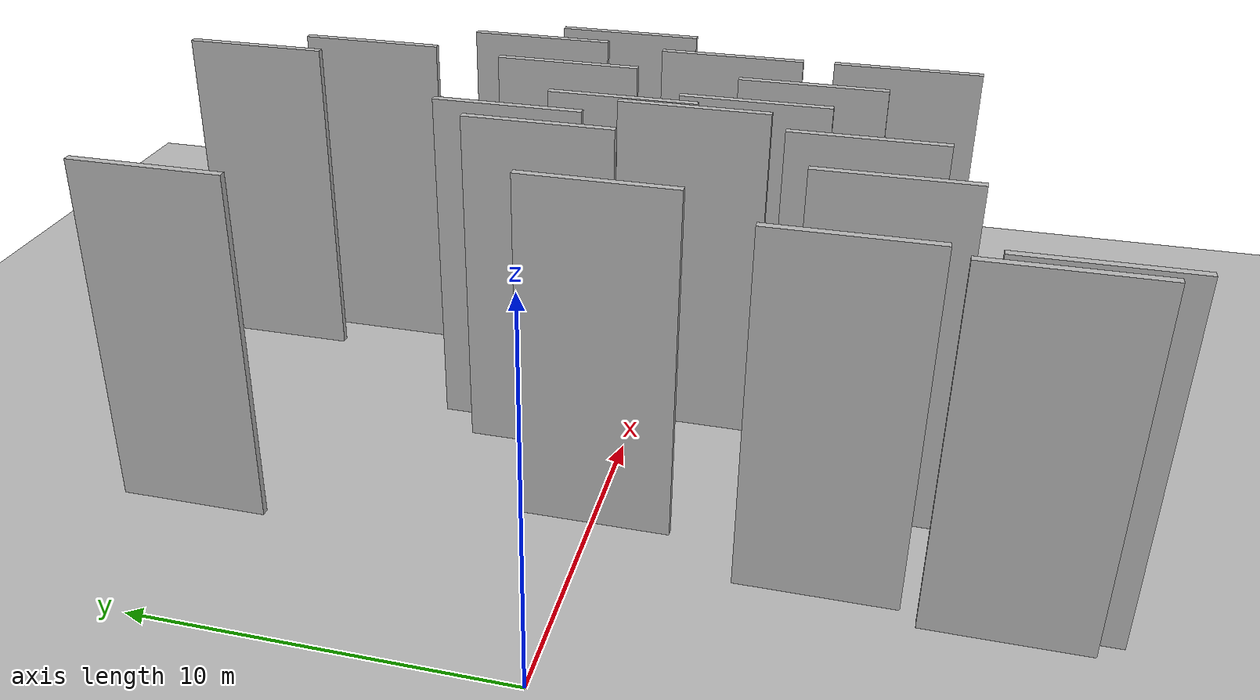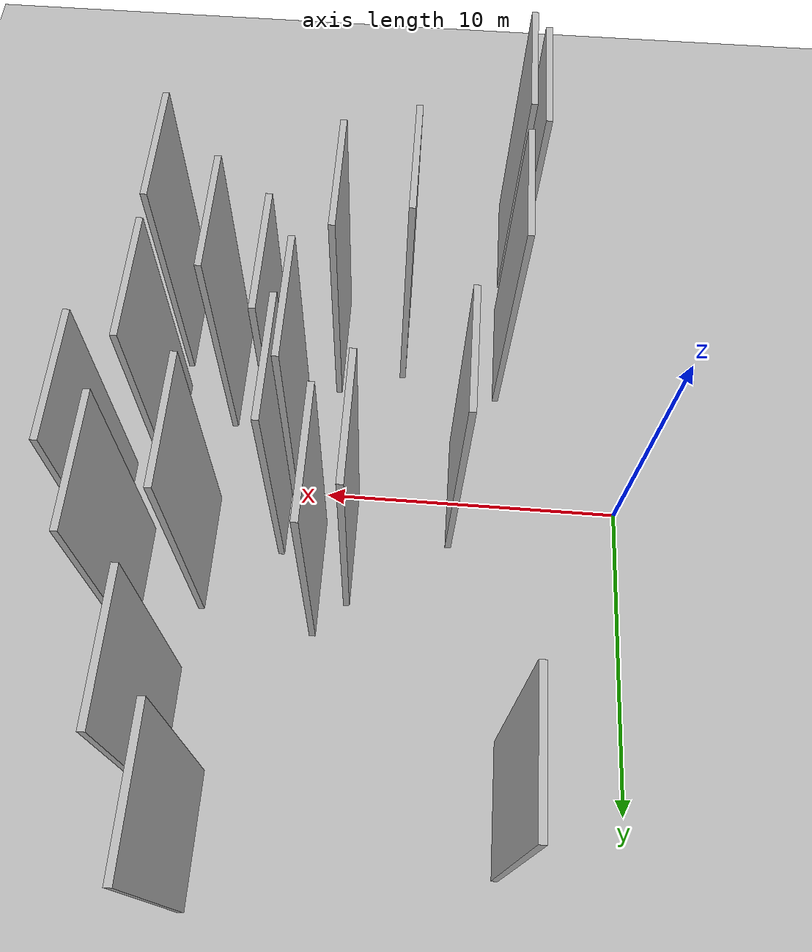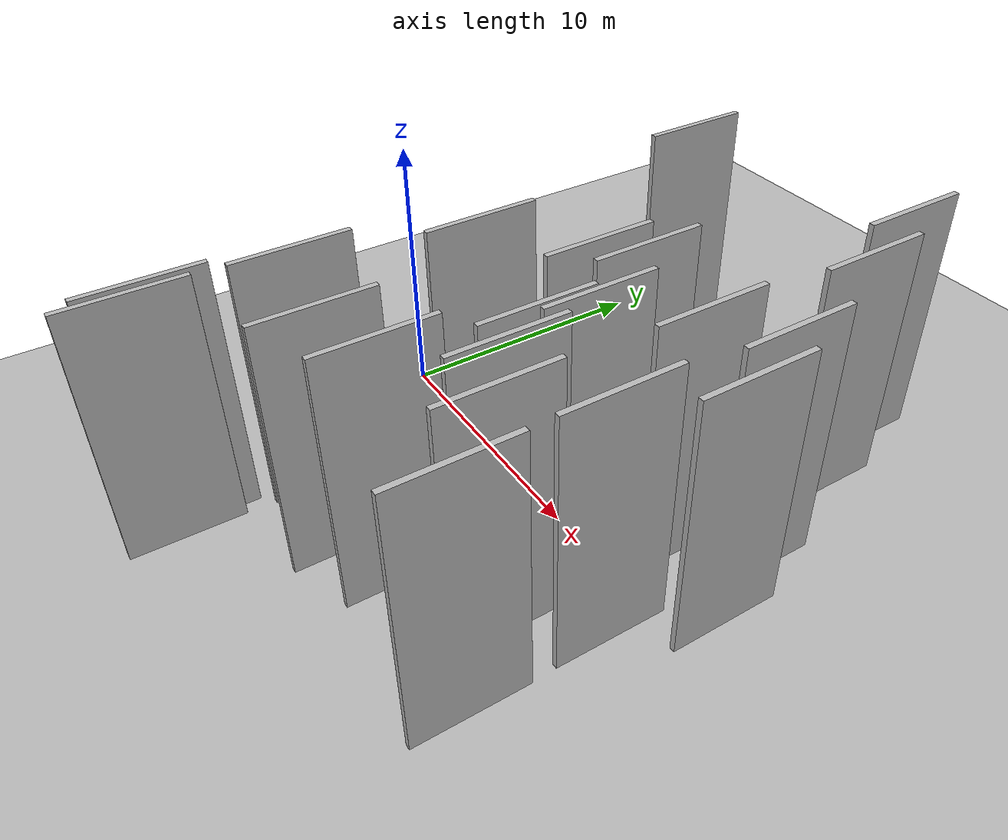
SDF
<?xml version="1.0" encoding="utf-8"?>

<sdf version="1.6">

   <world name="default">

      <gui fullscreen="0">

         <camera name="user_camera">

            <pose>-15 0 4.57585 0 0 0</pose>

            <view_controller>orbit</view_controller>

         </camera>

      </gui>

      <scene>

         <sky>

           <clouds>

             <speed>12</speed>

           </clouds>

         </sky>

         <ambient>0.4 0.4 0.4 1</ambient>

         <background>0.7 0.7 0.7 1</background>

         <shadows>1</shadows>

      </scene>

      <gravity>0 0 -9.8066</gravity>

      <magnetic_field>6e-06 2.3e-05 -4.2e-05</magnetic_field>

      <physics default="0" name="default_physics" type="ode">

         <ode>

            <solver>

               <type>quick</type>

               <iters>10</iters>

               <sor>1.0</sor>

               <use_dynamic_moi_rescaling>0</use_dynamic_moi_rescaling>

            </solver>

            <constraints>

               <cfm>0</cfm>

               <erp>0.2</erp>

               <contact_max_correcting_vel>100</contact_max_correcting_vel>

               <contact_surface_layer>0.001</contact_surface_layer>

            </constraints>

         </ode>

         <max_step_size>0.004</max_step_size>

         <real_time_factor>1</real_time_factor>

         <real_time_update_rate>250</real_time_update_rate>

      </physics>

      <light name="sun" type="directional">

         <cast_shadows>1</cast_shadows>

         <pose>0 0 10 0 0 0</pose>

         <diffuse>0.8 0.8 0.8 1</diffuse>

         <specular>0.2 0.2 0.2 1</specular>

         <attenuation>

            <range>1000</range>

            <constant>0.9</constant>

            <linear>0.01</linear>

            <quadratic>0.001</quadratic>

         </attenuation>

         <direction>-0.5 0.1 -0.9</direction>

      </light>

      <include>

         <name>ground_plane_1</name>

         <uri>model://HANNAS_ground_plane</uri>

         <pose>0 0 0  0 0 0</pose>

      </include>

      <include>

         <name>ground_plane_2</name>

         <uri>model://HANNAS_ground_plane</uri>

         <pose>100 0 0  0 0 0</pose>

      </include>

      <model name="HANNAS_wall_1">

         <static>1</static>

         <pose frame="">13.7205 2.5976 0.0 0.000000 0.000000 1.570796</pose>

         <link name="link">

            <pose frame="">0 0 5.00 0 0 0</pose>

            <collision name="collision">

               <geometry>

                  <box>

                     <size>4.00 0.2 10.00</size>

                  </box>

               </geometry>

               <max_contacts>10</max_contacts>

               <surface>

                  <contact>

                     <ode/>

                  </contact>

                  <bounce/>

                  <friction>

                     <torsional>

                        <ode/>

                     </torsional>

                     <ode/>

                  </friction>

               </surface>

            </collision>

            <visual name="visual">

               <cast_shadows>0</cast_shadows>

               <geometry>

                  <box>

                     <size>4.00 0.2 10.00</size>

                  </box>

               </geometry>

               <material>

                  <script>

                     <uri>model://HANNAS_wall/materials/scripts</uri>

                     <uri>model://HANNAS_wall/materials/textures</uri>

                     <name>vrc/HANNAS_wall</name>

                  </script>

               </material>

            </visual>

            <self_collide>0</self_collide>

            <enable_wind>0</enable_wind>

            <kinematic>0</kinematic>

         </link>

      </model>

      <model name="HANNAS_wall_2">

         <static>1</static>

         <pose frame="">16.8466 1.5013 0.0 0.000000 0.000000 1.570796</pose>

         <link name="link">

            <pose frame="">0 0 5.00 0 0 0</pose>

            <collision name="collision">

               <geometry>

                  <box>

                     <size>4.00 0.2 10.00</size>

                  </box>

               </geometry>

               <max_contacts>10</max_contacts>

               <surface>

                  <contact>

                     <ode/>

                  </contact>

                  <bounce/>

                  <friction>

                     <torsional>

                        <ode/>

                     </torsional>

                     <ode/>

                  </friction>

               </surface>

            </collision>

            <visual name="visual">

               <cast_shadows>0</cast_shadows>

               <geometry>

                  <box>

                     <size>4.00 0.2 10.00</size>

                  </box>

               </geometry>

               <material>

                  <script>

                     <uri>model://HANNAS_wall/materials/scripts</uri>

                     <uri>model://HANNAS_wall/materials/textures</uri>

                     <name>vrc/HANNAS_wall</name>

                  </script>

               </material>

            </visual>

            <self_collide>0</self_collide>

            <enable_wind>0</enable_wind>

            <kinematic>0</kinematic>

         </link>

      </model>

      <model name="HANNAS_wall_3">

         <static>1</static>

         <pose frame="">9.9424 -5.9270 0.0 0.000000 0.000000 1.570796</pose>

         <link name="link">

            <pose frame="">0 0 5.00 0 0 0</pose>

            <collision name="collision">

               <geometry>

                  <box>

                     <size>4.00 0.2 10.00</size>

                  </box>

               </geometry>

               <max_contacts>10</max_contacts>

               <surface>

                  <contact>

                     <ode/>

                  </contact>

                  <bounce/>

                  <friction>

                     <torsional>

                        <ode/>

                     </torsional>

                     <ode/>

                  </friction>

               </surface>

            </collision>

            <visual name="visual">

               <cast_shadows>0</cast_shadows>

               <geometry>

                  <box>

                     <size>4.00 0.2 10.00</size>

                  </box>

               </geometry>

               <material>

                  <script>

                     <uri>model://HANNAS_wall/materials/scripts</uri>

                     <uri>model://HANNAS_wall/materials/textures</uri>

                     <name>vrc/HANNAS_wall</name>

                  </script>

               </material>

            </visual>

            <self_collide>0</self_collide>

            <enable_wind>0</enable_wind>

            <kinematic>0</kinematic>

         </link>

      </model>

      <model name="HANNAS_wall_4">

         <static>1</static>

         <pose frame="">5.7435 -0.1744 0.0 0.000000 0.000000 1.570796</pose>

         <link name="link">

            <pose frame="">0 0 5.00 0 0 0</pose>

            <collision name="collision">

               <geometry>

                  <box>

                     <size>4.00 0.2 10.00</size>

                  </box>

               </geometry>

               <max_contacts>10</max_contacts>

               <surface>

                  <contact>

                     <ode/>

                  </contact>

                  <bounce/>

                  <friction>

                     <torsional>

                        <ode/>

                     </torsional>

                     <ode/>

                  </friction>

               </surface>

            </collision>

            <visual name="visual">

               <cast_shadows>0</cast_shadows>

               <geometry>

                  <box>

                     <size>4.00 0.2 10.00</size>

                  </box>

               </geometry>

               <material>

                  <script>

                     <uri>model://HANNAS_wall/materials/scripts</uri>

                     <uri>model://HANNAS_wall/materials/textures</uri>

                     <name>vrc/HANNAS_wall</name>

                  </script>

               </material>

            </visual>

            <self_collide>0</self_collide>

            <enable_wind>0</enable_wind>

            <kinematic>0</kinematic>

         </link>

      </model>

      <model name="HANNAS_wall_5">

         <static>1</static>

         <pose frame="">12.9524 11.7028 0.0 0.000000 0.000000 1.570796</pose>

         <link name="link">

            <pose frame="">0 0 5.00 0 0 0</pose>

            <collision name="collision">

               <geometry>

                  <box>

                     <size>4.00 0.2 10.00</size>

                  </box>

               </geometry>

               <max_contacts>10</max_contacts>

               <surface>

                  <contact>

                     <ode/>

                  </contact>

                  <bounce/>

                  <friction>

                     <torsional>

                        <ode/>

                     </torsional>

                     <ode/>

                  </friction>

               </surface>

            </collision>

            <visual name="visual">

               <cast_shadows>0</cast_shadows>

               <geometry>

                  <box>

                     <size>4.00 0.2 10.00</size>

                  </box>

               </geometry>

               <material>

                  <script>

                     <uri>model://HANNAS_wall/materials/scripts</uri>

                     <uri>model://HANNAS_wall/materials/textures</uri>

                     <name>vrc/HANNAS_wall</name>

                  </script>

               </material>

            </visual>

            <self_collide>0</self_collide>

            <enable_wind>0</enable_wind>

            <kinematic>0</kinematic>

         </link>

      </model>

      <model name="HANNAS_wall_6">

         <static>1</static>

         <pose frame="">7.6847 -6.7160 0.0 0.000000 0.000000 1.570796</pose>

         <link name="link">

            <pose frame="">0 0 5.00 0 0 0</pose>

            <collision name="collision">

               <geometry>

                  <box>

                     <size>4.00 0.2 10.00</size>

                  </box>

               </geometry>

               <max_contacts>10</max_contacts>

               <surface>

                  <contact>

                     <ode/>

                  </contact>

                  <bounce/>

                  <friction>

                     <torsional>

                        <ode/>

                     </torsional>

                     <ode/>

                  </friction>

               </surface>

            </collision>

            <visual name="visual">

               <cast_shadows>0</cast_shadows>

               <geometry>

                  <box>

                     <size>4.00 0.2 10.00</size>

                  </box>

               </geometry>

               <material>

                  <script>

                     <uri>model://HANNAS_wall/materials/scripts</uri>

                     <uri>model://HANNAS_wall/materials/textures</uri>

                     <name>vrc/HANNAS_wall</name>

                  </script>

               </material>

            </visual>

            <self_collide>0</self_collide>

            <enable_wind>0</enable_wind>

            <kinematic>0</kinematic>

         </link>

      </model>

      <model name="HANNAS_wall_7">

         <static>1</static>

         <pose frame="">11.8424 -2.9235 0.0 0.000000 0.000000 1.570796</pose>

         <link name="link">

            <pose frame="">0 0 5.00 0 0 0</pose>

            <collision name="collision">

               <geometry>

                  <box>

                     <size>4.00 0.2 10.00</size>

                  </box>

               </geometry>

               <max_contacts>10</max_contacts>

               <surface>

                  <contact>

                     <ode/>

                  </contact>

                  <bounce/>

                  <friction>

                     <torsional>

                        <ode/>

                     </torsional>

                     <ode/>

                  </friction>

               </surface>

            </collision>

            <visual name="visual">

               <cast_shadows>0</cast_shadows>

               <geometry>

                  <box>

                     <size>4.00 0.2 10.00</size>

                  </box>

               </geometry>

               <material>

                  <script>

                     <uri>model://HANNAS_wall/materials/scripts</uri>

                     <uri>model://HANNAS_wall/materials/textures</uri>

                     <name>vrc/HANNAS_wall</name>

                  </script>

               </material>

            </visual>

            <self_collide>0</self_collide>

            <enable_wind>0</enable_wind>

            <kinematic>0</kinematic>

         </link>

      </model>

      <model name="HANNAS_wall_8">

         <static>1</static>

         <pose frame="">15.4231 -1.7633 0.0 0.000000 0.000000 1.570796</pose>

         <link name="link">

            <pose frame="">0 0 5.00 0 0 0</pose>

            <collision name="collision">

               <geometry>

                  <box>

                     <size>4.00 0.2 10.00</size>

                  </box>

               </geometry>

               <max_contacts>10</max_contacts>

               <surface>

                  <contact>

                     <ode/>

                  </contact>

                  <bounce/>

                  <friction>

                     <torsional>

                        <ode/>

                     </torsional>

                     <ode/>

                  </friction>

               </surface>

            </collision>

            <visual name="visual">

               <cast_shadows>0</cast_shadows>

               <geometry>

                  <box>

                     <size>4.00 0.2 10.00</size>

                  </box>

               </geometry>

               <material>

                  <script>

                     <uri>model://HANNAS_wall/materials/scripts</uri>

                     <uri>model://HANNAS_wall/materials/textures</uri>

                     <name>vrc/HANNAS_wall</name>

                  </script>

               </material>

            </visual>

            <self_collide>0</self_collide>

            <enable_wind>0</enable_wind>

            <kinematic>0</kinematic>

         </link>

      </model>

      <model name="HANNAS_wall_9">

         <static>1</static>

         <pose frame="">15.4708 -6.6185 0.0 0.000000 0.000000 1.570796</pose>

         <link name="link">

            <pose frame="">0 0 5.00 0 0 0</pose>

            <collision name="collision">

               <geometry>

                  <box>

                     <size>4.00 0.2 10.00</size>

                  </box>

               </geometry>

               <max_contacts>10</max_contacts>

               <surface>

                  <contact>

                     <ode/>

                  </contact>

                  <bounce/>

                  <friction>

                     <torsional>

                        <ode/>

                     </torsional>

                     <ode/>

                  </friction>

               </surface>

            </collision>

            <visual name="visual">

               <cast_shadows>0</cast_shadows>

               <geometry>

                  <box>

                     <size>4.00 0.2 10.00</size>

                  </box>

               </geometry>

               <material>

                  <script>

                     <uri>model://HANNAS_wall/materials/scripts</uri>

                     <uri>model://HANNAS_wall/materials/textures</uri>

                     <name>vrc/HANNAS_wall</name>

                  </script>

               </material>

            </visual>

            <self_collide>0</self_collide>

            <enable_wind>0</enable_wind>

            <kinematic>0</kinematic>

         </link>

      </model>

      <model name="HANNAS_wall_10">

         <static>1</static>

         <pose frame="">14.1570 8.5987 0.0 0.000000 0.000000 1.570796</pose>

         <link name="link">

            <pose frame="">0 0 5.00 0 0 0</pose>

            <collision name="collision">

               <geometry>

                  <box>

                     <size>4.00 0.2 10.00</size>

                  </box>

               </geometry>

               <max_contacts>10</max_contacts>

               <surface>

                  <contact>

                     <ode/>

                  </contact>

                  <bounce/>

                  <friction>

                     <torsional>

                        <ode/>

                     </torsional>

                     <ode/>

                  </friction>

               </surface>

            </collision>

            <visual name="visual">

               <cast_shadows>0</cast_shadows>

               <geometry>

                  <box>

                     <size>4.00 0.2 10.00</size>

                  </box>

               </geometry>

               <material>

                  <script>

                     <uri>model://HANNAS_wall/materials/scripts</uri>

                     <uri>model://HANNAS_wall/materials/textures</uri>

                     <name>vrc/HANNAS_wall</name>

                  </script>

               </material>

            </visual>

            <self_collide>0</self_collide>

            <enable_wind>0</enable_wind>

            <kinematic>0</kinematic>

         </link>

      </model>

      <model name="HANNAS_wall_11">

         <static>1</static>

         <pose frame="">8.9793 2.1326 0.0 0.000000 0.000000 1.570796</pose>

         <link name="link">

            <pose frame="">0 0 5.00 0 0 0</pose>

            <collision name="collision">

               <geometry>

                  <box>

                     <size>4.00 0.2 10.00</size>

                  </box>

               </geometry>

               <max_contacts>10</max_contacts>

               <surface>

                  <contact>

                     <ode/>

                  </contact>

                  <bounce/>

                  <friction>

                     <torsional>

                        <ode/>

                     </torsional>

                     <ode/>

                  </friction>

               </surface>

            </collision>

            <visual name="visual">

               <cast_shadows>0</cast_shadows>

               <geometry>

                  <box>

                     <size>4.00 0.2 10.00</size>

                  </box>

               </geometry>

               <material>

                  <script>

                     <uri>model://HANNAS_wall/materials/scripts</uri>

                     <uri>model://HANNAS_wall/materials/textures</uri>

                     <name>vrc/HANNAS_wall</name>

                  </script>

               </material>

            </visual>

            <self_collide>0</self_collide>

            <enable_wind>0</enable_wind>

            <kinematic>0</kinematic>

         </link>

      </model>

      <model name="HANNAS_wall_12">

         <static>1</static>

         <pose frame="">4.2838 -5.9860 0.0 0.000000 0.000000 1.570796</pose>

         <link name="link">

            <pose frame="">0 0 5.00 0 0 0</pose>

            <collision name="collision">

               <geometry>

                  <box>

                     <size>4.00 0.2 10.00</size>

                  </box>

               </geometry>

               <max_contacts>10</max_contacts>

               <surface>

                  <contact>

                     <ode/>

                  </contact>

                  <bounce/>

                  <friction>

                     <torsional>

                        <ode/>

                     </torsional>

                     <ode/>

                  </friction>

               </surface>

            </collision>

            <visual name="visual">

               <cast_shadows>0</cast_shadows>

               <geometry>

                  <box>

                     <size>4.00 0.2 10.00</size>

                  </box>

               </geometry>

               <material>

                  <script>

                     <uri>model://HANNAS_wall/materials/scripts</uri>

                     <uri>model://HANNAS_wall/materials/textures</uri>

                     <name>vrc/HANNAS_wall</name>

                  </script>

               </material>

            </visual>

            <self_collide>0</self_collide>

            <enable_wind>0</enable_wind>

            <kinematic>0</kinematic>

         </link>

      </model>

      <model name="HANNAS_wall_13">

         <static>1</static>

         <pose frame="">11.3128 0.4939 0.0 0.000000 0.000000 1.570796</pose>

         <link name="link">

            <pose frame="">0 0 5.00 0 0 0</pose>

            <collision name="collision">

               <geometry>

                  <box>

                     <size>4.00 0.2 10.00</size>

                  </box>

               </geometry>

               <max_contacts>10</max_contacts>

               <surface>

                  <contact>

                     <ode/>

                  </contact>

                  <bounce/>

                  <friction>

                     <torsional>

                        <ode/>

                     </torsional>

                     <ode/>

                  </friction>

               </surface>

            </collision>

            <visual name="visual">

               <cast_shadows>0</cast_shadows>

               <geometry>

                  <box>

                     <size>4.00 0.2 10.00</size>

                  </box>

               </geometry>

               <material>

                  <script>

                     <uri>model://HANNAS_wall/materials/scripts</uri>

                     <uri>model://HANNAS_wall/materials/textures</uri>

                     <name>vrc/HANNAS_wall</name>

                  </script>

               </material>

            </visual>

            <self_collide>0</self_collide>

            <enable_wind>0</enable_wind>

            <kinematic>0</kinematic>

         </link>

      </model>

      <model name="HANNAS_wall_14">

         <static>1</static>

         <pose frame="">15.7968 3.9190 0.0 0.000000 0.000000 1.570796</pose>

         <link name="link">

            <pose frame="">0 0 5.00 0 0 0</pose>

            <collision name="collision">

               <geometry>

                  <box>

                     <size>4.00 0.2 10.00</size>

                  </box>

               </geometry>

               <max_contacts>10</max_contacts>

               <surface>

                  <contact>

                     <ode/>

                  </contact>

                  <bounce/>

                  <friction>

                     <torsional>

                        <ode/>

                     </torsional>

                     <ode/>

                  </friction>

               </surface>

            </collision>

            <visual name="visual">

               <cast_shadows>0</cast_shadows>

               <geometry>

                  <box>

                     <size>4.00 0.2 10.00</size>

                  </box>

               </geometry>

               <material>

                  <script>

                     <uri>model://HANNAS_wall/materials/scripts</uri>

                     <uri>model://HANNAS_wall/materials/textures</uri>

                     <name>vrc/HANNAS_wall</name>

                  </script>

               </material>

            </visual>

            <self_collide>0</self_collide>

            <enable_wind>0</enable_wind>

            <kinematic>0</kinematic>

         </link>

      </model>

      <model name="HANNAS_wall_15">

         <static>1</static>

         <pose frame="">9.9951 3.2353 0.0 0.000000 0.000000 1.570796</pose>

         <link name="link">

            <pose frame="">0 0 5.00 0 0 0</pose>

            <collision name="collision">

               <geometry>

                  <box>

                     <size>4.00 0.2 10.00</size>

                  </box>

               </geometry>

               <max_contacts>10</max_contacts>

               <surface>

                  <contact>

                     <ode/>

                  </contact>

                  <bounce/>

                  <friction>

                     <torsional>

                        <ode/>

                     </torsional>

                     <ode/>

                  </friction>

               </surface>

            </collision>

            <visual name="visual">

               <cast_shadows>0</cast_shadows>

               <geometry>

                  <box>

                     <size>4.00 0.2 10.00</size>

                  </box>

               </geometry>

               <material>

                  <script>

                     <uri>model://HANNAS_wall/materials/scripts</uri>

                     <uri>model://HANNAS_wall/materials/textures</uri>

                     <name>vrc/HANNAS_wall</name>

                  </script>

               </material>

            </visual>

            <self_collide>0</self_collide>

            <enable_wind>0</enable_wind>

            <kinematic>0</kinematic>

         </link>

      </model>

      <model name="HANNAS_wall_16">

         <static>1</static>

         <pose frame="">4.2090 -11.0206 0.0 0.000000 0.000000 1.570796</pose>

         <link name="link">

            <pose frame="">0 0 5.00 0 0 0</pose>

            <collision name="collision">

               <geometry>

                  <box>

                     <size>4.00 0.2 10.00</size>

                  </box>

               </geometry>

               <max_contacts>10</max_contacts>

               <surface>

                  <contact>

                     <ode/>

                  </contact>

                  <bounce/>

                  <friction>

                     <torsional>

                        <ode/>

                     </torsional>

                     <ode/>

                  </friction>

               </surface>

            </collision>

            <visual name="visual">

               <cast_shadows>0</cast_shadows>

               <geometry>

                  <box>

                     <size>4.00 0.2 10.00</size>

                  </box>

               </geometry>

               <material>

                  <script>

                     <uri>model://HANNAS_wall/materials/scripts</uri>

                     <uri>model://HANNAS_wall/materials/textures</uri>

                     <name>vrc/HANNAS_wall</name>

                  </script>

               </material>

            </visual>

            <self_collide>0</self_collide>

            <enable_wind>0</enable_wind>

            <kinematic>0</kinematic>

         </link>

      </model>

      <model name="HANNAS_wall_17">

         <static>1</static>

         <pose frame="">13.5219 -4.2298 0.0 0.000000 0.000000 1.570796</pose>

         <link name="link">

            <pose frame="">0 0 5.00 0 0 0</pose>

            <collision name="collision">

               <geometry>

                  <box>

                     <size>4.00 0.2 10.00</size>

                  </box>

               </geometry>

               <max_contacts>10</max_contacts>

               <surface>

                  <contact>

                     <ode/>

                  </contact>

                  <bounce/>

                  <friction>

                     <torsional>

                        <ode/>

                     </torsional>

                     <ode/>

                  </friction>

               </surface>

            </collision>

            <visual name="visual">

               <cast_shadows>0</cast_shadows>

               <geometry>

                  <box>

                     <size>4.00 0.2 10.00</size>

                  </box>

               </geometry>

               <material>

                  <script>

                     <uri>model://HANNAS_wall/materials/scripts</uri>

                     <uri>model://HANNAS_wall/materials/textures</uri>

                     <name>vrc/HANNAS_wall</name>

                  </script>

               </material>

            </visual>

            <self_collide>0</self_collide>

            <enable_wind>0</enable_wind>

            <kinematic>0</kinematic>

         </link>

      </model>

      <model name="HANNAS_wall_18">

         <static>1</static>

         <pose frame="">3.9309 10.1582 0.0 0.000000 0.000000 1.570796</pose>

         <link name="link">

            <pose frame="">0 0 5.00 0 0 0</pose>

            <collision name="collision">

               <geometry>

                  <box>

                     <size>4.00 0.2 10.00</size>

                  </box>

               </geometry>

               <max_contacts>10</max_contacts>

               <surface>

                  <contact>

                     <ode/>

                  </contact>

                  <bounce/>

                  <friction>

                     <torsional>

                        <ode/>

                     </torsional>

                     <ode/>

                  </friction>

               </surface>

            </collision>

            <visual name="visual">

               <cast_shadows>0</cast_shadows>

               <geometry>

                  <box>

                     <size>4.00 0.2 10.00</size>

                  </box>

               </geometry>

               <material>

                  <script>

                     <uri>model://HANNAS_wall/materials/scripts</uri>

                     <uri>model://HANNAS_wall/materials/textures</uri>

                     <name>vrc/HANNAS_wall</name>

                  </script>

               </material>

            </visual>

            <self_collide>0</self_collide>

            <enable_wind>0</enable_wind>

            <kinematic>0</kinematic>

         </link>

      </model>

      <model name="HANNAS_wall_19">

         <static>1</static>

         <pose frame="">3.7610 -10.3694 0.0 0.000000 0.000000 1.570796</pose>

         <link name="link">

            <pose frame="">0 0 5.00 0 0 0</pose>

            <collision name="collision">

               <geometry>

                  <box>

                     <size>4.00 0.2 10.00</size>

                  </box>

               </geometry>

               <max_contacts>10</max_contacts>

               <surface>

                  <contact>

                     <ode/>

                  </contact>

                  <bounce/>

                  <friction>

                     <torsional>

                        <ode/>

                     </torsional>

                     <ode/>

                  </friction>

               </surface>

            </collision>

            <visual name="visual">

               <cast_shadows>0</cast_shadows>

               <geometry>

                  <box>

                     <size>4.00 0.2 10.00</size>

                  </box>

               </geometry>

               <material>

                  <script>

                     <uri>model://HANNAS_wall/materials/scripts</uri>

                     <uri>model://HANNAS_wall/materials/textures</uri>

                     <name>vrc/HANNAS_wall</name>

                  </script>

               </material>

            </visual>

            <self_collide>0</self_collide>

            <enable_wind>0</enable_wind>

            <kinematic>0</kinematic>

         </link>

      </model>

      <model name="HANNAS_wall_20">

         <static>1</static>

         <pose frame="">11.0295 -1.4592 0.0 0.000000 0.000000 1.570796</pose>

         <link name="link">

            <pose frame="">0 0 5.00 0 0 0</pose>

            <collision name="collision">

               <geometry>

                  <box>

                     <size>4.00 0.2 10.00</size>

                  </box>

               </geometry>

               <max_contacts>10</max_contacts>

               <surface>

                  <contact>

                     <ode/>

                  </contact>

                  <bounce/>

                  <friction>

                     <torsional>

                        <ode/>

                     </torsional>

                     <ode/>

                  </friction>

               </surface>

            </collision>

            <visual name="visual">

               <cast_shadows>0</cast_shadows>

               <geometry>

                  <box>

                     <size>4.00 0.2 10.00</size>

                  </box>

               </geometry>

               <material>

                  <script>

                     <uri>model://HANNAS_wall/materials/scripts</uri>

                     <uri>model://HANNAS_wall/materials/textures</uri>

                     <name>vrc/HANNAS_wall</name>

                  </script>

               </material>

            </visual>

            <self_collide>0</self_collide>

            <enable_wind>0</enable_wind>

            <kinematic>0</kinematic>

         </link>

      </model>

   </world>

</sdf>

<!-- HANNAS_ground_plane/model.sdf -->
<sdf version="1.4">
<model name="HANNAS_ground_plane">
  <static>true</static>
    <link name="link">
      <collision name="collision">
        <geometry>
          <plane>
            <normal>0 0 1</normal>
            <size>1000 1000</size>
          </plane>
        </geometry>
        <surface>
          <friction>
            <ode>
              <mu>100</mu>
              <mu2>50</mu2>
            </ode>
          </friction>
        </surface>
      </collision>
      <visual name="visual">
        <cast_shadows>false</cast_shadows>
        <geometry>
          <plane>
            <normal>0 0 1</normal>
            <size>1000 1000</size>
          </plane>
        </geometry>
        <material>
          <script>
            <uri>model://HANNAS_ground_plane/materials/scripts/HANNAS_ground_plane.material</uri>
	    <uri>model://HANNAS_ground_plane/materials/textures</uri>
            <name>HANNASGroundPlane/Image</name>
          </script>
        </material>
      </visual>
    </link>
  </model>
</sdf>
